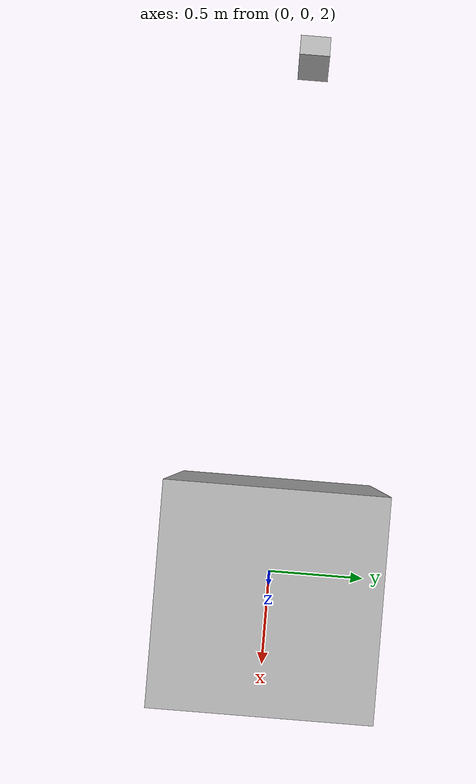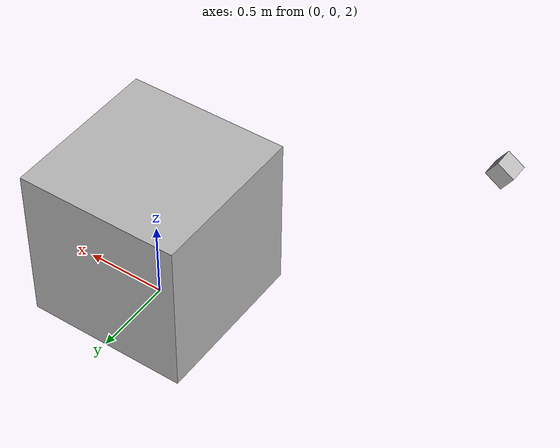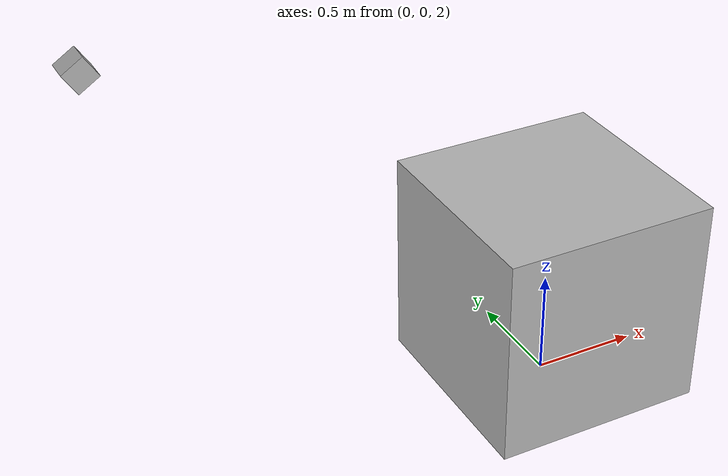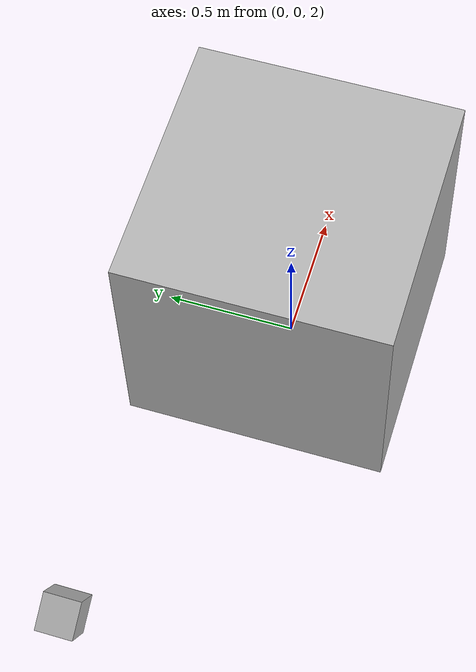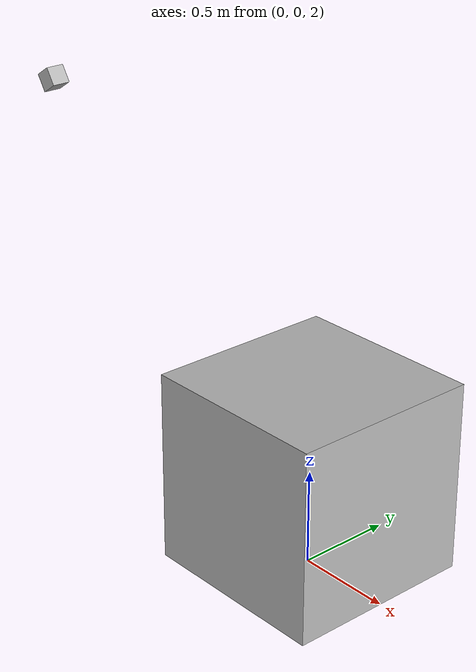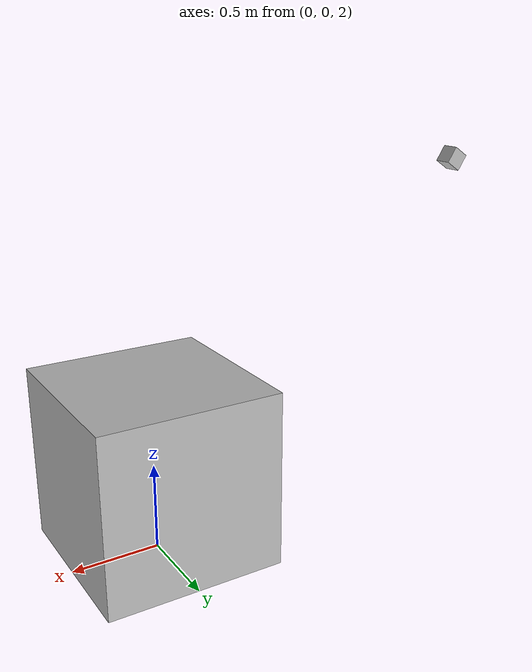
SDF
<?xml version="1.0"?>
<sdf version='1.6'>
  <world name='default'>

    <model name='unit_box'>
      <pose>0 0 2.5 0 -0 0</pose>
      <link name='link'>
        <visual name='visual'>
          <geometry>
            <box>
              <size>1 1 1</size>
            </box>
          </geometry>
        </visual>
      </link>
    </model>

    <light name='user_directional_light_0' type='directional'>
      <pose>0 0 1 0 0 0</pose>
    </light>

    <model name='camera'>
      <static>true</static>
      <pose>-2 0 4 0 1 0</pose>

	<!-- Joint for the Camera and the "optical frame"-->

      <link name='camera_link'>
        <visual name='visual'>
          <geometry>
            <box>
              <size>0.1 0.1 0.1</size>
            </box>
          </geometry>
          <material name="white" />
        </visual>
        <sensor name='my_camera' type='camera'>
	  <update_rate>30</update_rate>
          <camera>
            <save enabled="true">
              <path>/tmp/camera_save_tutorial</path>
            </save>
            <horizontal_fov>1.047</horizontal_fov>
            <image>
              <width>1920</width>
              <height>1080</height>
            </image>
            <clip>
              <near>0.1</near>
              <far>100</far>
            </clip>
          </camera>
	  <always_on>1</always_on>

 	   <!-- Include plugin for Publishing ROS Topics-->
           <plugin name="camera_controller" filename="libgazebo_ros_camera.so">
                <frame_name>camera_link_optical</frame_name>
                <min_depth>0.1</min_depth>
                <max_depth>500</max_depth>
            </plugin>

        </sensor>
    </link>

    </model>
  </world>
</sdf>
